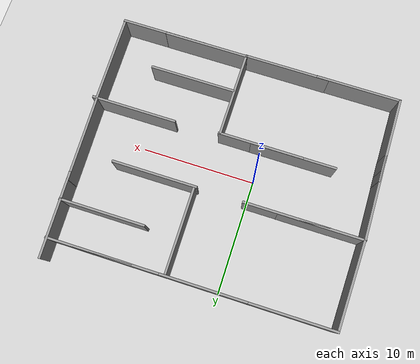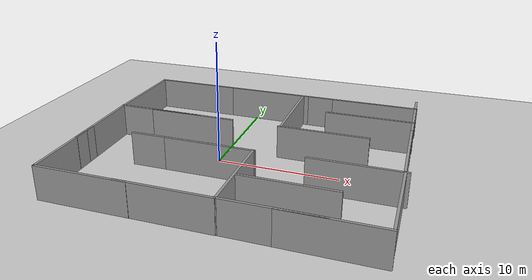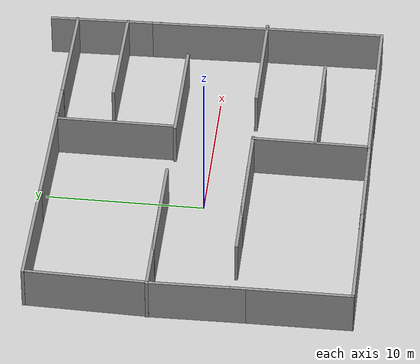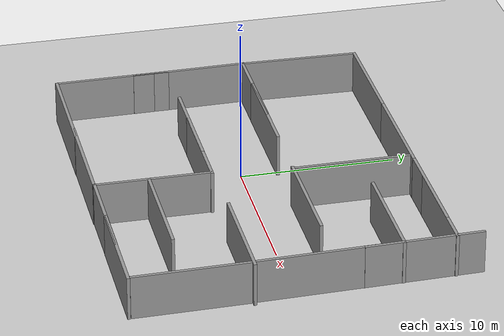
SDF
<sdf version="1.7">
 <world name="default">
  <light name="sun" type="directional">
   <pose>0 0 10 0 -0 0</pose>
   <diffuse>0.8 0.8 0.8 1</diffuse>
   <specular>0.2 0.2 0.2 1</specular>
   <attenuation>
    <range>1000</range>
    <constant>0.9</constant>
    <linear>0.01</linear>
    <quadratic>0.001</quadratic>
   </attenuation>
   <direction>-0.5 0.1 -0.9</direction>
   <spot><inner_angle>0</inner_angle><outer_angle>0</outer_angle><falloff>0</falloff></spot>
  </light>
  <model name="ground_plane">
   <static>1</static>
   <link name="link">
    <collision name="collision">
     <geometry><plane><normal>0 0 1</normal><size>100 100</size></plane></geometry>
     <surface>
      <contact><collide_bitmask>65535</collide_bitmask></contact>
      <friction><ode><mu>100</mu><mu2>50</mu2></ode></friction>
     </surface>
    </collision>
    <visual name="visual">
     <cast_shadows>0</cast_shadows>
     <geometry><plane><normal>0 0 1</normal><size>100 100</size></plane></geometry>
     <material>
      <script><uri>file://media/materials/scripts/gazebo.material</uri><name>Gazebo/Grey</name></script>
     </material>
    </visual>
   </link>
  </model>
  <gravity>0 0 -9.8</gravity>
  <magnetic_field>6e-06 2.3e-05 -4.2e-05</magnetic_field>
  <atmosphere type="adiabatic"/>
  <physics type="ode">
   <max_step_size>0.001</max_step_size>
   <real_time_factor>1</real_time_factor>
   <real_time_update_rate>1000</real_time_update_rate>
  </physics>
  <scene><ambient>0.4 0.4 0.4 1</ambient><background>0.7 0.7 0.7 1</background><shadows>1</shadows></scene>
  <spherical_coordinates>
   <surface_model>EARTH_WGS84</surface_model>
   <latitude_deg>0</latitude_deg>
   <longitude_deg>0</longitude_deg>
   <elevation>0</elevation>
   <heading_deg>0</heading_deg>
  </spherical_coordinates>
  <model name="grey_wall">
   <static>1</static>
   <link name="link">
    <pose>0 0 1.4 0 -0 0</pose>
    <collision name="collision"><geometry><box><size>7.5 0.2 2.8</size></box></geometry></collision>
    <visual name="visual">
     <cast_shadows>0</cast_shadows>
     <geometry><box><size>7.5 0.2 2.8</size></box></geometry>
     <material>
      <script>
       <uri>model://grey_wall/materials/scripts</uri>
       <uri>model://grey_wall/materials/textures</uri>
       <name>vrc/grey_wall</name>
      </script>
     </material>
    </visual>
   </link>
   <pose>0.283907 -2.68883 0 0 -0 0</pose>
  </model>
  <model name="grey_wall_0">
   <static>1</static>
   <link name="link">
    <pose>0 0 1.4 0 -0 0</pose>
    <collision name="collision"><geometry><box><size>7.5 0.2 2.8</size></box></geometry></collision>
    <visual name="visual">
     <cast_shadows>0</cast_shadows>
     <geometry><box><size>7.5 0.2 2.8</size></box></geometry>
     <material>
      <script>
       <uri>model://grey_wall/materials/scripts</uri>
       <uri>model://grey_wall/materials/textures</uri>
       <name>vrc/grey_wall</name>
      </script>
     </material>
    </visual>
   </link>
   <pose>-3.41954 2.36671 0 0 -0 0</pose>
  </model>
  <model name="grey_wall_1">
   <static>1</static>
   <link name="link">
    <pose>0 0 1.4 0 -0 0</pose>
    <collision name="collision"><geometry><box><size>7.5 0.2 2.8</size></box></geometry></collision>
    <visual name="visual">
     <cast_shadows>0</cast_shadows>
     <geometry><box><size>7.5 0.2 2.8</size></box></geometry>
     <material>
      <script>
       <uri>model://grey_wall/materials/scripts</uri>
       <uri>model://grey_wall/materials/textures</uri>
       <name>vrc/grey_wall</name>
      </script>
     </material>
    </visual>
   </link>
   <pose>8.00526 2.34549 0 0 -0 0</pose>
  </model>
  <model name="grey_wall_2">
   <static>1</static>
   <link name="link">
    <pose>0 0 1.4 0 -0 0</pose>
    <collision name="collision"><geometry><box><size>7.5 0.2 2.8</size></box></geometry></collision>
    <visual name="visual">
     <cast_shadows>0</cast_shadows>
     <geometry><box><size>7.5 0.2 2.8</size></box></geometry>
     <material>
      <script>
       <uri>model://grey_wall/materials/scripts</uri>
       <uri>model://grey_wall/materials/textures</uri>
       <name>vrc/grey_wall</name>
      </script>
     </material>
    </visual>
   </link>
   <pose>11.5428 -2.5124 0 0 -0 0</pose>
  </model>
  <model name="grey_wall_3">
   <static>1</static>
   <link name="link">
    <pose>0 0 1.4 0 -0 0</pose>
    <collision name="collision"><geometry><box><size>7.5 0.2 2.8</size></box></geometry></collision>
    <visual name="visual">
     <cast_shadows>0</cast_shadows>
     <geometry><box><size>7.5 0.2 2.8</size></box></geometry>
     <material>
      <script>
       <uri>model://grey_wall/materials/scripts</uri>
       <uri>model://grey_wall/materials/textures</uri>
       <name>vrc/grey_wall</name>
      </script>
     </material>
    </visual>
   </link>
   <pose>14.7923 1.26565 0 0 -0 1.59598</pose>
  </model>
  <model name="grey_wall_4">
   <static>1</static>
   <link name="link">
    <pose>0 0 1.4 0 -0 0</pose>
    <collision name="collision"><geometry><box><size>7.5 0.2 2.8</size></box></geometry></collision>
    <visual name="visual">
     <cast_shadows>0</cast_shadows>
     <geometry><box><size>7.5 0.2 2.8</size></box></geometry>
     <material>
      <script>
       <uri>model://grey_wall/materials/scripts</uri>
       <uri>model://grey_wall/materials/textures</uri>
       <name>vrc/grey_wall</name>
      </script>
     </material>
    </visual>
   </link>
   <pose>11.052 6.68093 0 0 -0 0</pose>
  </model>
  <model name="grey_wall_5">
   <static>1</static>
   <link name="link">
    <pose>0 0 1.4 0 -0 0</pose>
    <collision name="collision"><geometry><box><size>7.5 0.2 2.8</size></box></geometry></collision>
    <visual name="visual">
     <cast_shadows>0</cast_shadows>
     <geometry><box><size>7.5 0.2 2.8</size></box></geometry>
     <material>
      <script>
       <uri>model://grey_wall/materials/scripts</uri>
       <uri>model://grey_wall/materials/textures</uri>
       <name>vrc/grey_wall</name>
      </script>
     </material>
    </visual>
   </link>
   <pose>3.84091 -6.40172 0 0 -0 1.5667</pose>
  </model>
  <model name="grey_wall_6">
   <static>1</static>
   <link name="link">
    <pose>0 0 1.4 0 -0 0</pose>
    <collision name="collision"><geometry><box><size>7.5 0.2 2.8</size></box></geometry></collision>
    <visual name="visual">
     <cast_shadows>0</cast_shadows>
     <geometry><box><size>7.5 0.2 2.8</size></box></geometry>
     <material>
      <script>
       <uri>model://grey_wall/materials/scripts</uri>
       <uri>model://grey_wall/materials/textures</uri>
       <name>vrc/grey_wall</name>
      </script>
     </material>
    </visual>
   </link>
   <pose>7.61444 -6.64329 0 0 -0 0</pose>
  </model>
  <model name="grey_wall_7">
   <static>1</static>
   <link name="link">
    <pose>0 0 1.4 0 -0 0</pose>
    <collision name="collision"><geometry><box><size>7.5 0.2 2.8</size></box></geometry></collision>
    <visual name="visual">
     <cast_shadows>0</cast_shadows>
     <geometry><box><size>7.5 0.2 2.8</size></box></geometry>
     <material>
      <script>
       <uri>model://grey_wall/materials/scripts</uri>
       <uri>model://grey_wall/materials/textures</uri>
       <name>vrc/grey_wall</name>
      </script>
     </material>
    </visual>
   </link>
   <pose>14.9659 -6.19685 0 0 -0 1.58398</pose>
  </model>
  <model name="grey_wall_8">
   <static>1</static>
   <link name="link">
    <pose>0 0 1.4 0 -0 0</pose>
    <collision name="collision"><geometry><box><size>7.5 0.2 2.8</size></box></geometry></collision>
    <visual name="visual">
     <cast_shadows>0</cast_shadows>
     <geometry><box><size>7.5 0.2 2.8</size></box></geometry>
     <material>
      <script>
       <uri>model://grey_wall/materials/scripts</uri>
       <uri>model://grey_wall/materials/textures</uri>
       <name>vrc/grey_wall</name>
      </script>
     </material>
    </visual>
   </link>
   <pose>7.46417 -10.0438 0 0 -0 0</pose>
  </model>
  <model name="grey_wall_9">
   <static>1</static>
   <link name="link">
    <pose>0 0 1.4 0 -0 0</pose>
    <collision name="collision"><geometry><box><size>7.5 0.2 2.8</size></box></geometry></collision>
    <visual name="visual">
     <cast_shadows>0</cast_shadows>
     <geometry><box><size>7.5 0.2 2.8</size></box></geometry>
     <material>
      <script>
       <uri>model://grey_wall/materials/scripts</uri>
       <uri>model://grey_wall/materials/textures</uri>
       <name>vrc/grey_wall</name>
      </script>
     </material>
    </visual>
   </link>
   <pose>11.3965 -10.054 0 0 -0 0</pose>
  </model>
  <model name="grey_wall_10">
   <static>1</static>
   <link name="link">
    <pose>0 0 1.4 0 -0 0</pose>
    <collision name="collision"><geometry><box><size>7.5 0.2 2.8</size></box></geometry></collision>
    <visual name="visual">
     <cast_shadows>0</cast_shadows>
     <geometry><box><size>7.5 0.2 2.8</size></box></geometry>
     <material>
      <script>
       <uri>model://grey_wall/materials/scripts</uri>
       <uri>model://grey_wall/materials/textures</uri>
       <name>vrc/grey_wall</name>
      </script>
     </material>
    </visual>
   </link>
   <pose>-6.47644 2.37844 0 0 -0 0</pose>
  </model>
  <model name="grey_wall_11">
   <static>1</static>
   <link name="link">
    <pose>0 0 1.4 0 -0 0</pose>
    <collision name="collision"><geometry><box><size>7.5 0.2 2.8</size></box></geometry></collision>
    <visual name="visual">
     <cast_shadows>0</cast_shadows>
     <geometry><box><size>7.5 0.2 2.8</size></box></geometry>
     <material>
      <script>
       <uri>model://grey_wall/materials/scripts</uri>
       <uri>model://grey_wall/materials/textures</uri>
       <name>vrc/grey_wall</name>
      </script>
     </material>
    </visual>
   </link>
   <pose>-2.60576 -2.67935 0 0 -0 0</pose>
  </model>
  <model name="grey_wall_12">
   <static>1</static>
   <link name="link">
    <pose>0 0 1.4 0 -0 0</pose>
    <collision name="collision"><geometry><box><size>7.5 0.2 2.8</size></box></geometry></collision>
    <visual name="visual">
     <cast_shadows>0</cast_shadows>
     <geometry><box><size>7.5 0.2 2.8</size></box></geometry>
     <material>
      <script>
       <uri>model://grey_wall/materials/scripts</uri>
       <uri>model://grey_wall/materials/textures</uri>
       <name>vrc/grey_wall</name>
      </script>
     </material>
    </visual>
   </link>
   <pose>-10.0512 -1.26614 0 0 -0 1.58657</pose>
  </model>
  <model name="grey_wall_13">
   <static>1</static>
   <link name="link">
    <pose>0 0 1.4 0 -0 0</pose>
    <collision name="collision"><geometry><box><size>7.5 0.2 2.8</size></box></geometry></collision>
    <visual name="visual">
     <cast_shadows>0</cast_shadows>
     <geometry><box><size>7.5 0.2 2.8</size></box></geometry>
     <material>
      <script>
       <uri>model://grey_wall/materials/scripts</uri>
       <uri>model://grey_wall/materials/textures</uri>
       <name>vrc/grey_wall</name>
      </script>
     </material>
    </visual>
   </link>
   <pose>-9.99411 -6.40379 0 0 -0 1.5779</pose>
  </model>
  <model name="grey_wall_14">
   <static>1</static>
   <link name="link">
    <pose>0 0 1.4 0 -0 0</pose>
    <collision name="collision"><geometry><box><size>7.5 0.2 2.8</size></box></geometry></collision>
    <visual name="visual">
     <cast_shadows>0</cast_shadows>
     <geometry><box><size>7.5 0.2 2.8</size></box></geometry>
     <material>
      <script>
       <uri>model://grey_wall/materials/scripts</uri>
       <uri>model://grey_wall/materials/textures</uri>
       <name>vrc/grey_wall</name>
      </script>
     </material>
    </visual>
   </link>
   <pose>-6.31651 -10.1009 0 0 -0 0</pose>
  </model>
  <model name="grey_wall_15">
   <static>1</static>
   <link name="link">
    <pose>0 0 1.4 0 -0 0</pose>
    <collision name="collision"><geometry><box><size>7.5 0.2 2.8</size></box></geometry></collision>
    <visual name="visual">
     <cast_shadows>0</cast_shadows>
     <geometry><box><size>7.5 0.2 2.8</size></box></geometry>
     <material>
      <script>
       <uri>model://grey_wall/materials/scripts</uri>
       <uri>model://grey_wall/materials/textures</uri>
       <name>vrc/grey_wall</name>
      </script>
     </material>
    </visual>
   </link>
   <pose>0.093457 -10.0804 0 0 -0 0</pose>
  </model>
  <model name="grey_wall_16">
   <static>1</static>
   <link name="link">
    <pose>0 0 1.4 0 -0 0</pose>
    <collision name="collision"><geometry><box><size>7.5 0.2 2.8</size></box></geometry></collision>
    <visual name="visual">
     <cast_shadows>0</cast_shadows>
     <geometry><box><size>7.5 0.2 2.8</size></box></geometry>
     <material>
      <script>
       <uri>model://grey_wall/materials/scripts</uri>
       <uri>model://grey_wall/materials/textures</uri>
       <name>vrc/grey_wall</name>
      </script>
     </material>
    </visual>
   </link>
   <pose>-9.99084 6.12312 0 0 -0 1.54565</pose>
  </model>
  <model name="grey_wall_17">
   <static>1</static>
   <link name="link">
    <pose>0 0 1.4 0 -0 0</pose>
    <collision name="collision"><geometry><box><size>7.5 0.2 2.8</size></box></geometry></collision>
    <visual name="visual">
     <cast_shadows>0</cast_shadows>
     <geometry><box><size>7.5 0.2 2.8</size></box></geometry>
     <material>
      <script>
       <uri>model://grey_wall/materials/scripts</uri>
       <uri>model://grey_wall/materials/textures</uri>
       <name>vrc/grey_wall</name>
      </script>
     </material>
    </visual>
   </link>
   <pose>-6.25081 9.97783 0 0 -0 0</pose>
  </model>
  <model name="grey_wall_18">
   <static>1</static>
   <link name="link">
    <pose>0 0 1.4 0 -0 0</pose>
    <collision name="collision"><geometry><box><size>7.5 0.2 2.8</size></box></geometry></collision>
    <visual name="visual">
     <cast_shadows>0</cast_shadows>
     <geometry><box><size>7.5 0.2 2.8</size></box></geometry>
     <material>
      <script>
       <uri>model://grey_wall/materials/scripts</uri>
       <uri>model://grey_wall/materials/textures</uri>
       <name>vrc/grey_wall</name>
      </script>
     </material>
    </visual>
   </link>
   <pose>1.22486 9.97697 0 0 -0 0</pose>
  </model>
  <model name="grey_wall_19">
   <static>1</static>
   <link name="link">
    <pose>0 0 1.4 0 -0 0</pose>
    <collision name="collision"><geometry><box><size>7.5 0.2 2.8</size></box></geometry></collision>
    <visual name="visual">
     <cast_shadows>0</cast_shadows>
     <geometry><box><size>7.5 0.2 2.8</size></box></geometry>
     <material>
      <script>
       <uri>model://grey_wall/materials/scripts</uri>
       <uri>model://grey_wall/materials/textures</uri>
       <name>vrc/grey_wall</name>
      </script>
     </material>
    </visual>
   </link>
   <pose>8.71727 9.98219 0 0 -0 0</pose>
  </model>
  <model name="grey_wall_20">
   <static>1</static>
   <link name="link">
    <pose>0 0 1.4 0 -0 0</pose>
    <collision name="collision"><geometry><box><size>7.5 0.2 2.8</size></box></geometry></collision>
    <visual name="visual">
     <cast_shadows>0</cast_shadows>
     <geometry><box><size>7.5 0.2 2.8</size></box></geometry>
     <material>
      <script>
       <uri>model://grey_wall/materials/scripts</uri>
       <uri>model://grey_wall/materials/textures</uri>
       <name>vrc/grey_wall</name>
      </script>
     </material>
    </visual>
   </link>
   <pose>10.988 9.97532 0 0 -0 0</pose>
  </model>
  <model name="grey_wall_21">
   <static>1</static>
   <link name="link">
    <pose>0 0 1.4 0 -0 0</pose>
    <collision name="collision"><geometry><box><size>7.5 0.2 2.8</size></box></geometry></collision>
    <visual name="visual">
     <cast_shadows>0</cast_shadows>
     <geometry><box><size>7.5 0.2 2.8</size></box></geometry>
     <material>
      <script>
       <uri>model://grey_wall/materials/scripts</uri>
       <uri>model://grey_wall/materials/textures</uri>
       <name>vrc/grey_wall</name>
      </script>
     </material>
    </visual>
   </link>
   <pose>14.6323 7.99813 0 0 -0 1.59716</pose>
  </model>
  <model name="grey_wall_22">
   <static>1</static>
   <link name="link">
    <pose>0 0 1.4 0 -0 0</pose>
    <collision name="collision"><geometry><box><size>7.5 0.2 2.8</size></box></geometry></collision>
    <visual name="visual">
     <cast_shadows>0</cast_shadows>
     <geometry><box><size>7.5 0.2 2.8</size></box></geometry>
     <material>
      <script>
       <uri>model://grey_wall/materials/scripts</uri>
       <uri>model://grey_wall/materials/textures</uri>
       <name>vrc/grey_wall</name>
      </script>
     </material>
    </visual>
   </link>
   <pose>4.47946 6.18452 0 0 -0 1.57313</pose>
  </model>
 </world>
</sdf>
